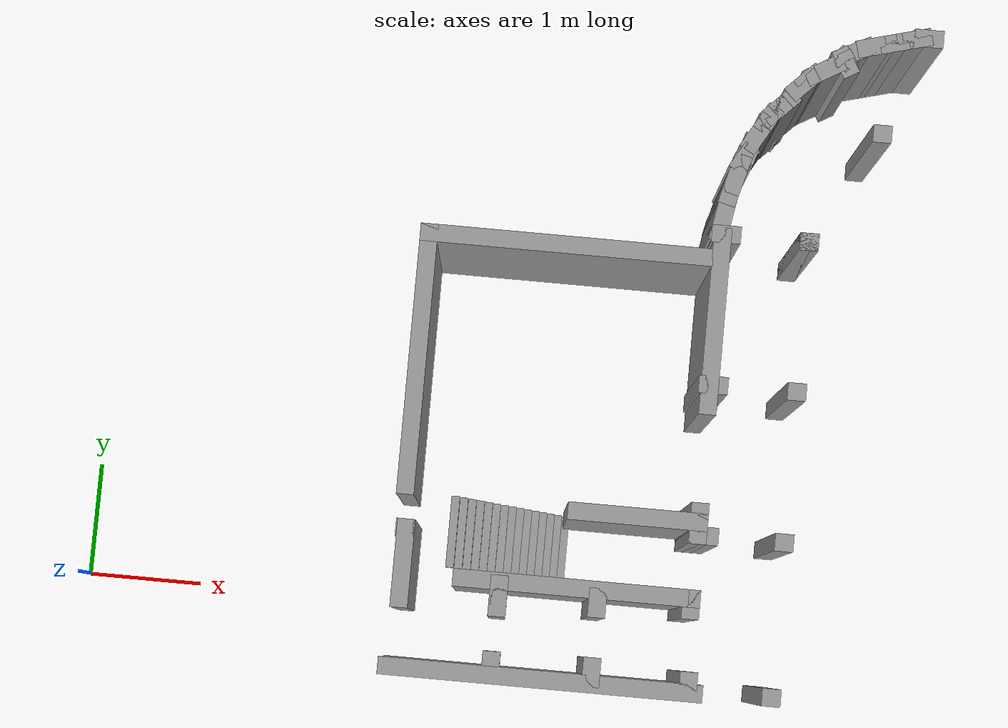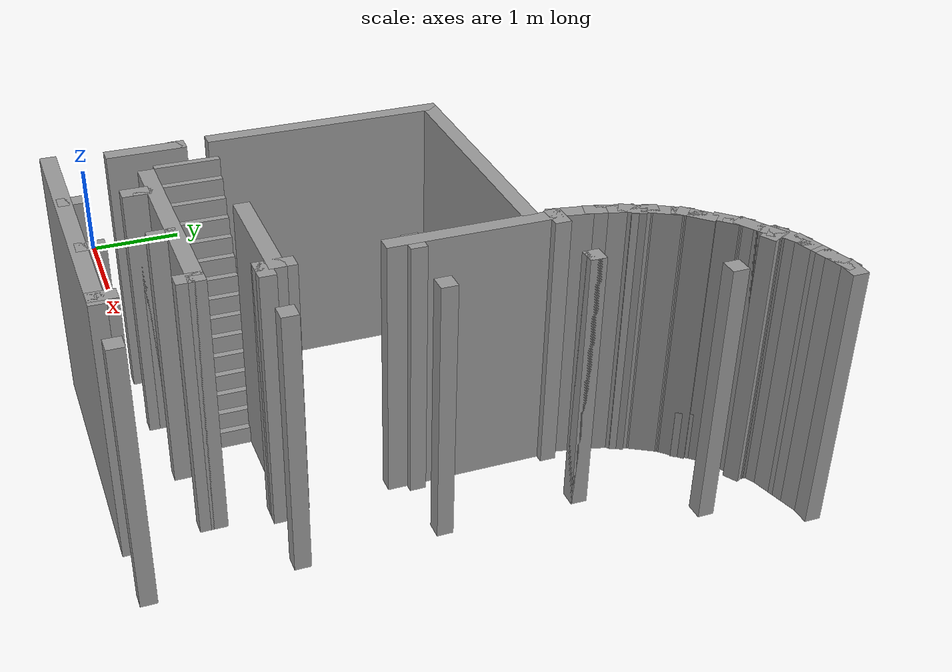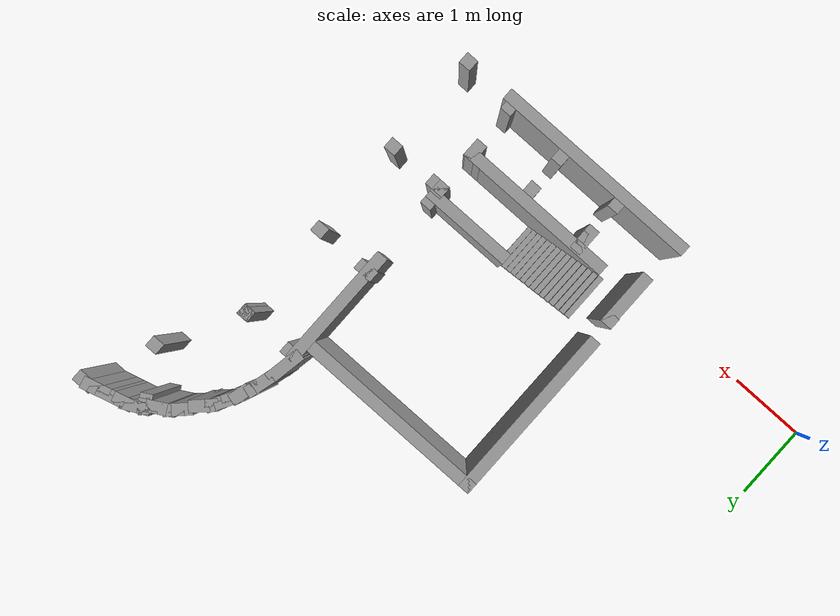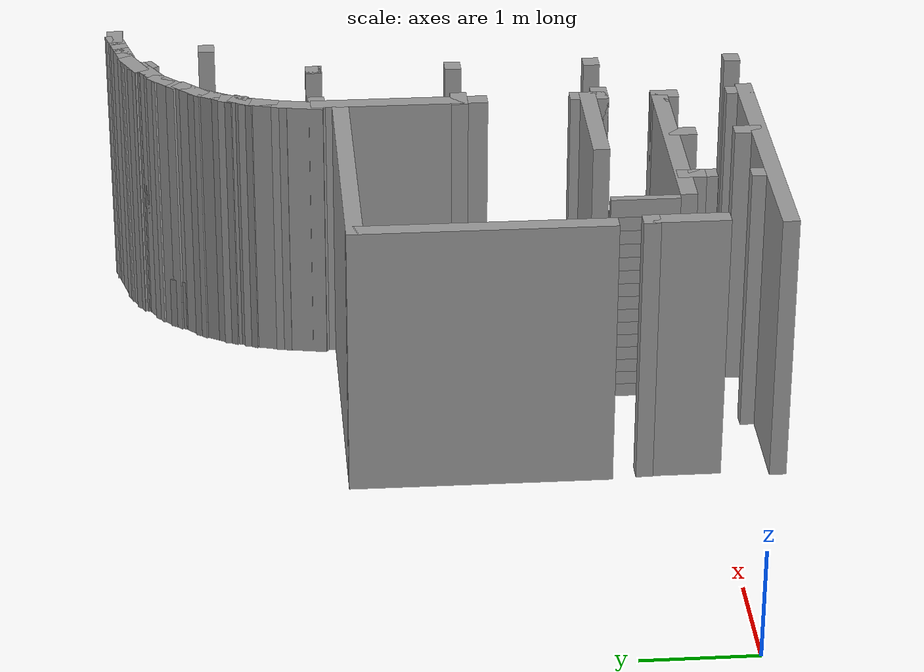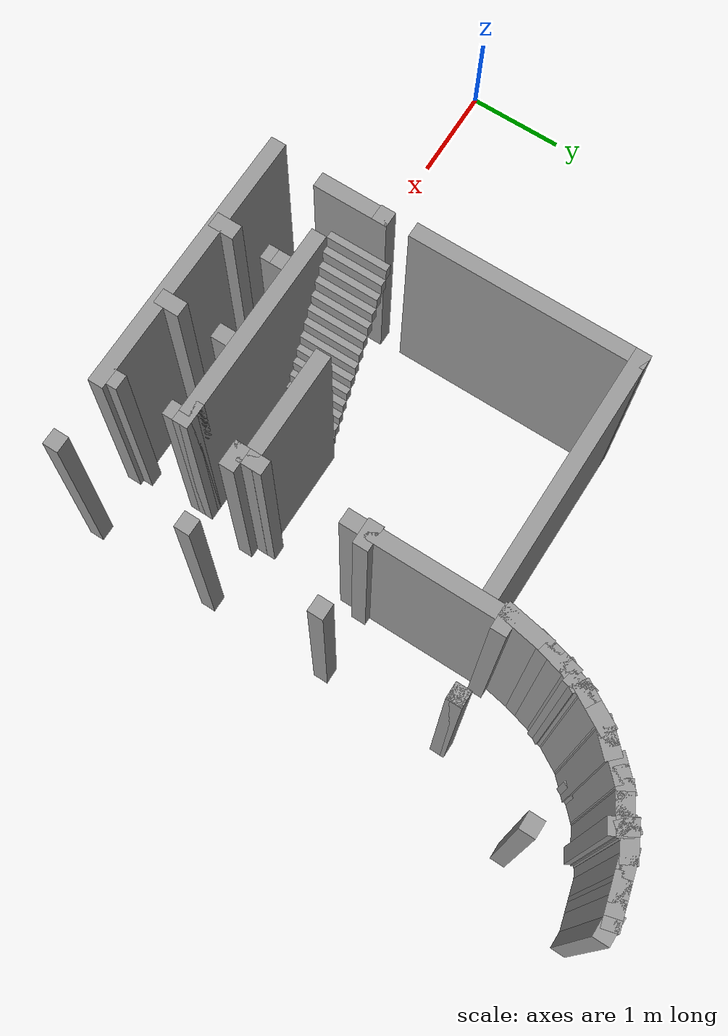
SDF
<sdf version="1.6">
 <model name="draft2">
  <pose>6.97389 -0.64018 0 0 -0 0</pose>
  <link name="Stairs_0">
   <visual name="Stairs_0_Visual_0">
    <pose>-2.70588 1.24176 0.083333 0 -0 -1.5708</pose>
    <geometry><box><size>0.60325 0.069343 0.166667</size></box></geometry>
    <material>
     <script><uri>file://media/materials/scripts/gazebo.material</uri><name>Gazebo/Grey</name></script>
     <ambient>1 1 1 1</ambient>
    </material>
   </visual>
   <collision name="Stairs_0_Collision_0">
    <geometry><box><size>0.60325 0.069343 0.166667</size></box></geometry>
    <pose>-2.70588 1.24176 0.083333 0 -0 -1.5708</pose>
   </collision>
   <visual name="Stairs_0_Visual_1">
    <pose>-2.77522 1.24176 0.25 0 -0 -1.5708</pose>
    <geometry><box><size>0.60325 0.069343 0.166667</size></box></geometry>
    <material>
     <script><uri>file://media/materials/scripts/gazebo.material</uri><name>Gazebo/Grey</name></script>
     <ambient>1 1 1 1</ambient>
    </material>
   </visual>
   <collision name="Stairs_0_Collision_1">
    <geometry><box><size>0.60325 0.069343 0.166667</size></box></geometry>
    <pose>-2.77522 1.24176 0.25 0 -0 -1.5708</pose>
   </collision>
   <visual name="Stairs_0_Visual_2">
    <pose>-2.84456 1.24176 0.416667 0 -0 -1.5708</pose>
    <geometry><box><size>0.60325 0.069343 0.166667</size></box></geometry>
    <material>
     <script><uri>file://media/materials/scripts/gazebo.material</uri><name>Gazebo/Grey</name></script>
     <ambient>1 1 1 1</ambient>
    </material>
   </visual>
   <collision name="Stairs_0_Collision_2">
    <geometry><box><size>0.60325 0.069343 0.166667</size></box></geometry>
    <pose>-2.84456 1.24176 0.416667 0 -0 -1.5708</pose>
   </collision>
   <visual name="Stairs_0_Visual_3">
    <pose>-2.91391 1.24176 0.583333 0 -0 -1.5708</pose>
    <geometry><box><size>0.60325 0.069343 0.166667</size></box></geometry>
    <material>
     <script><uri>file://media/materials/scripts/gazebo.material</uri><name>Gazebo/Grey</name></script>
     <ambient>1 1 1 1</ambient>
    </material>
   </visual>
   <collision name="Stairs_0_Collision_3">
    <geometry><box><size>0.60325 0.069343 0.166667</size></box></geometry>
    <pose>-2.91391 1.24176 0.583333 0 -0 -1.5708</pose>
   </collision>
   <visual name="Stairs_0_Visual_4">
    <pose>-2.98325 1.24176 0.75 0 -0 -1.5708</pose>
    <geometry><box><size>0.60325 0.069343 0.166667</size></box></geometry>
    <material>
     <script><uri>file://media/materials/scripts/gazebo.material</uri><name>Gazebo/Grey</name></script>
     <ambient>1 1 1 1</ambient>
    </material>
   </visual>
   <collision name="Stairs_0_Collision_4">
    <geometry><box><size>0.60325 0.069343 0.166667</size></box></geometry>
    <pose>-2.98325 1.24176 0.75 0 -0 -1.5708</pose>
   </collision>
   <visual name="Stairs_0_Visual_5">
    <pose>-3.05259 1.24176 0.916667 0 -0 -1.5708</pose>
    <geometry><box><size>0.60325 0.069343 0.166667</size></box></geometry>
    <material>
     <script><uri>file://media/materials/scripts/gazebo.material</uri><name>Gazebo/Grey</name></script>
     <ambient>1 1 1 1</ambient>
    </material>
   </visual>
   <collision name="Stairs_0_Collision_5">
    <geometry><box><size>0.60325 0.069343 0.166667</size></box></geometry>
    <pose>-3.05259 1.24176 0.916667 0 -0 -1.5708</pose>
   </collision>
   <visual name="Stairs_0_Visual_6">
    <pose>-3.12194 1.24176 1.08333 0 -0 -1.5708</pose>
    <geometry><box><size>0.60325 0.069343 0.166667</size></box></geometry>
    <material>
     <script><uri>file://media/materials/scripts/gazebo.material</uri><name>Gazebo/Grey</name></script>
     <ambient>1 1 1 1</ambient>
    </material>
   </visual>
   <collision name="Stairs_0_Collision_6">
    <geometry><box><size>0.60325 0.069343 0.166667</size></box></geometry>
    <pose>-3.12194 1.24176 1.08333 0 -0 -1.5708</pose>
   </collision>
   <visual name="Stairs_0_Visual_7">
    <pose>-3.19128 1.24176 1.25 0 -0 -1.5708</pose>
    <geometry><box><size>0.60325 0.069343 0.166667</size></box></geometry>
    <material>
     <script><uri>file://media/materials/scripts/gazebo.material</uri><name>Gazebo/Grey</name></script>
     <ambient>1 1 1 1</ambient>
    </material>
   </visual>
   <collision name="Stairs_0_Collision_7">
    <geometry><box><size>0.60325 0.069343 0.166667</size></box></geometry>
    <pose>-3.19128 1.24176 1.25 0 -0 -1.5708</pose>
   </collision>
   <visual name="Stairs_0_Visual_8">
    <pose>-3.26062 1.24176 1.41667 0 -0 -1.5708</pose>
    <geometry><box><size>0.60325 0.069343 0.166667</size></box></geometry>
    <material>
     <script><uri>file://media/materials/scripts/gazebo.material</uri><name>Gazebo/Grey</name></script>
     <ambient>1 1 1 1</ambient>
    </material>
   </visual>
   <collision name="Stairs_0_Collision_8">
    <geometry><box><size>0.60325 0.069343 0.166667</size></box></geometry>
    <pose>-3.26062 1.24176 1.41667 0 -0 -1.5708</pose>
   </collision>
   <visual name="Stairs_0_Visual_9">
    <pose>-3.32997 1.24176 1.58333 0 -0 -1.5708</pose>
    <geometry><box><size>0.60325 0.069343 0.166667</size></box></geometry>
    <material>
     <script><uri>file://media/materials/scripts/gazebo.material</uri><name>Gazebo/Grey</name></script>
     <ambient>1 1 1 1</ambient>
    </material>
   </visual>
   <collision name="Stairs_0_Collision_9">
    <geometry><box><size>0.60325 0.069343 0.166667</size></box></geometry>
    <pose>-3.32997 1.24176 1.58333 0 -0 -1.5708</pose>
   </collision>
   <visual name="Stairs_0_Visual_10">
    <pose>-3.39931 1.24176 1.75 0 -0 -1.5708</pose>
    <geometry><box><size>0.60325 0.069343 0.166667</size></box></geometry>
    <material>
     <script><uri>file://media/materials/scripts/gazebo.material</uri><name>Gazebo/Grey</name></script>
     <ambient>1 1 1 1</ambient>
    </material>
   </visual>
   <collision name="Stairs_0_Collision_10">
    <geometry><box><size>0.60325 0.069343 0.166667</size></box></geometry>
    <pose>-3.39931 1.24176 1.75 0 -0 -1.5708</pose>
   </collision>
   <visual name="Stairs_0_Visual_11">
    <pose>-3.46865 1.24176 1.91667 0 -0 -1.5708</pose>
    <geometry><box><size>0.60325 0.069343 0.166667</size></box></geometry>
    <material>
     <script><uri>file://media/materials/scripts/gazebo.material</uri><name>Gazebo/Grey</name></script>
     <ambient>1 1 1 1</ambient>
    </material>
   </visual>
   <collision name="Stairs_0_Collision_11">
    <geometry><box><size>0.60325 0.069343 0.166667</size></box></geometry>
    <pose>-3.46865 1.24176 1.91667 0 -0 -1.5708</pose>
   </collision>
   <visual name="Stairs_0_Visual_12">
    <pose>-3.538 1.24176 2.08333 0 -0 -1.5708</pose>
    <geometry><box><size>0.60325 0.069343 0.166667</size></box></geometry>
    <material>
     <script><uri>file://media/materials/scripts/gazebo.material</uri><name>Gazebo/Grey</name></script>
     <ambient>1 1 1 1</ambient>
    </material>
   </visual>
   <collision name="Stairs_0_Collision_12">
    <geometry><box><size>0.60325 0.069343 0.166667</size></box></geometry>
    <pose>-3.538 1.24176 2.08333 0 -0 -1.5708</pose>
   </collision>
   <visual name="Stairs_0_Visual_13">
    <pose>-3.60734 1.24176 2.25 0 -0 -1.5708</pose>
    <geometry><box><size>0.60325 0.069343 0.166667</size></box></geometry>
    <material>
     <script><uri>file://media/materials/scripts/gazebo.material</uri><name>Gazebo/Grey</name></script>
     <ambient>1 1 1 1</ambient>
    </material>
   </visual>
   <collision name="Stairs_0_Collision_13">
    <geometry><box><size>0.60325 0.069343 0.166667</size></box></geometry>
    <pose>-3.60734 1.24176 2.25 0 -0 -1.5708</pose>
   </collision>
   <visual name="Stairs_0_Visual_14">
    <pose>-3.67668 1.24176 2.41667 0 -0 -1.5708</pose>
    <geometry><box><size>0.60325 0.069343 0.166667</size></box></geometry>
    <material>
     <script><uri>file://media/materials/scripts/gazebo.material</uri><name>Gazebo/Grey</name></script>
     <ambient>1 1 1 1</ambient>
    </material>
   </visual>
   <collision name="Stairs_0_Collision_14">
    <geometry><box><size>0.60325 0.069343 0.166667</size></box></geometry>
    <pose>-3.67668 1.24176 2.41667 0 -0 -1.5708</pose>
   </collision>
  </link>
  <link name="Wall_10">
   <collision name="Wall_10_Collision">
    <geometry><box><size>0.16 0.15 2.5</size></box></geometry>
    <pose>0 0 1.25 0 -0 0</pose>
   </collision>
   <visual name="Wall_10_Visual">
    <pose>0 0 1.25 0 -0 0</pose>
    <geometry><box><size>0.16 0.15 2.5</size></box></geometry>
    <material>
     <script><uri>file://media/materials/scripts/gazebo.material</uri><name>Gazebo/Grey</name></script>
     <ambient>1 1 1 1</ambient>
    </material>
   </visual>
   <pose>-4.08069 1.24095 0 0 -0 0</pose>
  </link>
  <link name="Wall_107">
   <collision name="Wall_107_Collision">
    <geometry><box><size>0.25 0.15 2.5</size></box></geometry>
    <pose>0 0 1.25 0 -0 0</pose>
   </collision>
   <visual name="Wall_107_Visual">
    <pose>0 0 1.25 0 -0 0</pose>
    <geometry><box><size>0.25 0.15 2.5</size></box></geometry>
    <material>
     <script><uri>file://media/materials/scripts/gazebo.material</uri><name>Gazebo/Grey</name></script>
     <ambient>1 1 1 1</ambient>
    </material>
   </visual>
   <pose>-1.58806 3.9678 0 0 -0 3.14159</pose>
  </link>
  <link name="Wall_109">
   <collision name="Wall_109_Collision">
    <geometry><box><size>0.25 0.15 2.5</size></box></geometry>
    <pose>0 0 1.25 0 -0 0</pose>
   </collision>
   <visual name="Wall_109_Visual">
    <pose>0 0 1.25 0 -0 0</pose>
    <geometry><box><size>0.25 0.15 2.5</size></box></geometry>
    <material>
     <script><uri>file://media/materials/scripts/gazebo.material</uri><name>Gazebo/Grey</name></script>
     <ambient>1 1 1 1</ambient>
    </material>
   </visual>
   <pose>-1.58806 2.67781 0 0 -0 0</pose>
  </link>
  <link name="Wall_11">
   <collision name="Wall_11_Collision">
    <geometry><box><size>0.75 0.15 2.5</size></box></geometry>
    <pose>0 0 1.25 0 -0 0</pose>
   </collision>
   <visual name="Wall_11_Visual">
    <pose>0 0 1.25 0 -0 0</pose>
    <geometry><box><size>0.75 0.15 2.5</size></box></geometry>
    <material>
     <script><uri>file://media/materials/scripts/gazebo.material</uri><name>Gazebo/Grey</name></script>
     <ambient>1 1 1 1</ambient>
    </material>
   </visual>
   <pose>-4.07569 0.940948 0 0 0 -1.5708</pose>
  </link>
  <link name="Wall_123">
   <collision name="Wall_123_Collision">
    <geometry><box><size>0.16 0.15 2.5</size></box></geometry>
    <pose>0 0 1.25 0 -0 0</pose>
   </collision>
   <visual name="Wall_123_Visual">
    <pose>0 0 1.25 0 -0 0</pose>
    <geometry><box><size>0.16 0.15 2.5</size></box></geometry>
    <material>
     <script><uri>file://media/materials/scripts/gazebo.material</uri><name>Gazebo/Grey</name></script>
     <ambient>1 1 1 1</ambient>
    </material>
   </visual>
   <pose>-0.877885 3.96618 0 0 -0 0</pose>
  </link>
  <link name="Wall_124">
   <collision name="Wall_124_Collision">
    <geometry><box><size>0.16 0.15 2.5</size></box></geometry>
    <pose>0 0 1.25 0 -0 0</pose>
   </collision>
   <visual name="Wall_124_Visual">
    <pose>0 0 1.25 0 -0 0</pose>
    <geometry><box><size>0.16 0.15 2.5</size></box></geometry>
    <material>
     <script><uri>file://media/materials/scripts/gazebo.material</uri><name>Gazebo/Grey</name></script>
     <ambient>1 1 1 1</ambient>
    </material>
   </visual>
   <pose>-0.877885 3.96618 0 0 -0 3.14159</pose>
  </link>
  <link name="Wall_127">
   <collision name="Wall_127_Collision">
    <geometry><box><size>0.16 0.15 2.5</size></box></geometry>
    <pose>0 0 1.25 0 -0 0</pose>
   </collision>
   <visual name="Wall_127_Visual">
    <pose>0 0 1.25 0 -0 0</pose>
    <geometry><box><size>0.16 0.15 2.5</size></box></geometry>
    <material>
     <script><uri>file://media/materials/scripts/gazebo.material</uri><name>Gazebo/Grey</name></script>
     <ambient>1 1 1 1</ambient>
    </material>
   </visual>
   <pose>-0.335407 4.94454 0 0 -0 0</pose>
  </link>
  <link name="Wall_129">
   <collision name="Wall_129_Collision">
    <geometry><box><size>0.16 0.15 2.5</size></box></geometry>
    <pose>0 0 1.25 0 -0 0</pose>
   </collision>
   <visual name="Wall_129_Visual">
    <pose>0 0 1.25 0 -0 0</pose>
    <geometry><box><size>0.16 0.15 2.5</size></box></geometry>
    <material>
     <script><uri>file://media/materials/scripts/gazebo.material</uri><name>Gazebo/Grey</name></script>
     <ambient>1 1 1 1</ambient>
    </material>
   </visual>
   <pose>-0.877632 2.68306 0 0 -0 0</pose>
  </link>
  <link name="Wall_13">
   <collision name="Wall_13_Collision">
    <geometry><box><size>2 0.15 2.5</size></box></geometry>
    <pose>0 0 1.25 0 -0 0</pose>
   </collision>
   <visual name="Wall_13_Visual">
    <pose>0 0 1.25 0 -0 0</pose>
    <geometry><box><size>2 0.15 2.5</size></box></geometry>
    <material>
     <script><uri>file://media/materials/scripts/gazebo.material</uri><name>Gazebo/Grey</name></script>
     <ambient>1 1 1 1</ambient>
    </material>
   </visual>
   <pose>-2.64319 0.861448 0 0 -0 0</pose>
  </link>
  <link name="Wall_131">
   <collision name="Wall_131_Collision">
    <geometry><box><size>0.16 0.15 2.5</size></box></geometry>
    <pose>0 0 1.25 0 -0 0</pose>
   </collision>
   <visual name="Wall_131_Visual">
    <pose>0 0 1.25 0 -0 0</pose>
    <geometry><box><size>0.16 0.15 2.5</size></box></geometry>
    <material>
     <script><uri>file://media/materials/scripts/gazebo.material</uri><name>Gazebo/Grey</name></script>
     <ambient>1 1 1 1</ambient>
    </material>
   </visual>
   <pose>-0.877632 1.40024 0 0 -0 0</pose>
  </link>
  <link name="Wall_133">
   <collision name="Wall_133_Collision">
    <geometry><box><size>0.16 0.15 2.5</size></box></geometry>
    <pose>0 0 1.25 0 -0 0</pose>
   </collision>
   <visual name="Wall_133_Visual">
    <pose>0 0 1.25 0 -0 0</pose>
    <geometry><box><size>0.16 0.15 2.5</size></box></geometry>
    <material>
     <script><uri>file://media/materials/scripts/gazebo.material</uri><name>Gazebo/Grey</name></script>
     <ambient>1 1 1 1</ambient>
    </material>
   </visual>
   <pose>-0.877632 0.090964 0 0 -0 0</pose>
  </link>
  <link name="Wall_16">
   <collision name="Wall_16_Collision">
    <geometry><box><size>0.25 0.15 2.5</size></box></geometry>
    <pose>0 0 1.25 0 -0 0</pose>
   </collision>
   <visual name="Wall_16_Visual">
    <pose>0 0 1.25 0 -0 0</pose>
    <geometry><box><size>0.25 0.15 2.5</size></box></geometry>
    <material>
     <script><uri>file://media/materials/scripts/gazebo.material</uri><name>Gazebo/Grey</name></script>
     <ambient>1 1 1 1</ambient>
    </material>
   </visual>
   <pose>-1.66819 0.861448 0 0 -0 0</pose>
  </link>
  <link name="Wall_17">
   <collision name="Wall_17_Collision">
    <geometry><box><size>0.25 0.15 2.5</size></box></geometry>
    <pose>0 0 1.25 0 -0 0</pose>
   </collision>
   <visual name="Wall_17_Visual">
    <pose>0 0 1.25 0 -0 0</pose>
    <geometry><box><size>0.25 0.15 2.5</size></box></geometry>
    <material>
     <script><uri>file://media/materials/scripts/gazebo.material</uri><name>Gazebo/Grey</name></script>
     <ambient>1 1 1 1</ambient>
    </material>
   </visual>
   <pose>-1.61819 0.811448 0 0 0 -1.5708</pose>
  </link>
  <link name="Wall_175">
   <collision name="Wall_175_Collision">
    <geometry><box><size>0.25 0.15 2.5</size></box></geometry>
    <pose>0 0 1.25 0 -0 0</pose>
   </collision>
   <visual name="Wall_175_Visual">
    <pose>0 0 1.25 0 -0 0</pose>
    <geometry><box><size>0.25 0.15 2.5</size></box></geometry>
    <material>
     <script><uri>file://media/materials/scripts/gazebo.material</uri><name>Gazebo/Grey</name></script>
     <ambient>1 1 1 1</ambient>
    </material>
   </visual>
   <pose>-1.61001 1.54861 0 0 0 -1.5708</pose>
  </link>
  <link name="Wall_176">
   <collision name="Wall_176_Collision">
    <geometry><box><size>0.25 0.15 2.5</size></box></geometry>
    <pose>0 0 1.25 0 -0 0</pose>
   </collision>
   <visual name="Wall_176_Visual">
    <pose>0 0 1.25 0 -0 0</pose>
    <geometry><box><size>0.25 0.15 2.5</size></box></geometry>
    <material>
     <script><uri>file://media/materials/scripts/gazebo.material</uri><name>Gazebo/Grey</name></script>
     <ambient>1 1 1 1</ambient>
    </material>
   </visual>
   <pose>-1.61001 1.44861 0 0 0 -1.5708</pose>
  </link>
  <link name="Wall_177">
   <collision name="Wall_177_Collision">
    <geometry><box><size>0.25 0.15 2.5</size></box></geometry>
    <pose>0 0 1.25 0 -0 0</pose>
   </collision>
   <visual name="Wall_177_Visual">
    <pose>0 0 1.25 0 -0 0</pose>
    <geometry><box><size>0.25 0.15 2.5</size></box></geometry>
    <material>
     <script><uri>file://media/materials/scripts/gazebo.material</uri><name>Gazebo/Grey</name></script>
     <ambient>1 1 1 1</ambient>
    </material>
   </visual>
   <pose>-1.56001 1.39861 0 0 -0 0</pose>
  </link>
  <link name="Wall_179">
   <collision name="Wall_179_Collision">
    <geometry><box><size>0.25 0.15 2.5</size></box></geometry>
    <pose>0 0 1.25 0 -0 0</pose>
   </collision>
   <visual name="Wall_179_Visual">
    <pose>0 0 1.25 0 -0 0</pose>
    <geometry><box><size>0.25 0.15 2.5</size></box></geometry>
    <material>
     <script><uri>file://media/materials/scripts/gazebo.material</uri><name>Gazebo/Grey</name></script>
     <ambient>1 1 1 1</ambient>
    </material>
   </visual>
   <pose>-1.58356 0.120314 0 0 0 -1.5708</pose>
  </link>
  <link name="Wall_21">
   <collision name="Wall_21_Collision">
    <geometry><box><size>0.25 0.15 2.5</size></box></geometry>
    <pose>0 0 1.25 0 -0 0</pose>
   </collision>
   <visual name="Wall_21_Visual">
    <pose>0 0 1.25 0 -0 0</pose>
    <geometry><box><size>0.25 0.15 2.5</size></box></geometry>
    <material>
     <script><uri>file://media/materials/scripts/gazebo.material</uri><name>Gazebo/Grey</name></script>
     <ambient>1 1 1 1</ambient>
    </material>
   </visual>
   <pose>-2.40669 0.753948 0 0 0 -1.5708</pose>
  </link>
  <link name="Wall_23">
   <collision name="Wall_23_Collision">
    <geometry><box><size>0.25 0.15 2.5</size></box></geometry>
    <pose>0 0 1.25 0 -0 0</pose>
   </collision>
   <visual name="Wall_23_Visual">
    <pose>0 0 1.25 0 -0 0</pose>
    <geometry><box><size>0.25 0.15 2.5</size></box></geometry>
    <material>
     <script><uri>file://media/materials/scripts/gazebo.material</uri><name>Gazebo/Grey</name></script>
     <ambient>1 1 1 1</ambient>
    </material>
   </visual>
   <pose>-3.24619 0.788448 0 0 0 -1.5708</pose>
  </link>
  <link name="Wall_24">
   <collision name="Wall_24_Collision">
    <geometry><box><size>0.25 0.15 2.5</size></box></geometry>
    <pose>0 0 1.25 0 -0 0</pose>
   </collision>
   <visual name="Wall_24_Visual">
    <pose>0 0 1.25 0 -0 0</pose>
    <geometry><box><size>0.25 0.15 2.5</size></box></geometry>
    <material>
     <script><uri>file://media/materials/scripts/gazebo.material</uri><name>Gazebo/Grey</name></script>
     <ambient>1 1 1 1</ambient>
    </material>
   </visual>
   <pose>-3.24619 0.688448 0 0 0 -1.5708</pose>
  </link>
  <link name="Wall_26">
   <collision name="Wall_26_Collision">
    <geometry><box><size>0.25 0.15 2.5</size></box></geometry>
    <pose>0 0 1.25 0 -0 0</pose>
   </collision>
   <visual name="Wall_26_Visual">
    <pose>0 0 1.25 0 -0 0</pose>
    <geometry><box><size>0.25 0.15 2.5</size></box></geometry>
    <material>
     <script><uri>file://media/materials/scripts/gazebo.material</uri><name>Gazebo/Grey</name></script>
     <ambient>1 1 1 1</ambient>
    </material>
   </visual>
   <pose>-3.25769 0.144448 0 0 0 -1.5708</pose>
  </link>
  <link name="Wall_28">
   <collision name="Wall_28_Collision">
    <geometry><box><size>0.25 0.15 2.5</size></box></geometry>
    <pose>0 0 1.25 0 -0 0</pose>
   </collision>
   <visual name="Wall_28_Visual">
    <pose>0 0 1.25 0 -0 0</pose>
    <geometry><box><size>0.25 0.15 2.5</size></box></geometry>
    <material>
     <script><uri>file://media/materials/scripts/gazebo.material</uri><name>Gazebo/Grey</name></script>
     <ambient>1 1 1 1</ambient>
    </material>
   </visual>
   <pose>-2.40669 0.167448 0 0 0 -1.5708</pose>
  </link>
  <link name="Wall_306">
   <collision name="Wall_306_Collision">
    <geometry><box><size>1.19007 0.15 2.5</size></box></geometry>
    <pose>0 0 1.25 0 -0 0</pose>
   </collision>
   <visual name="Wall_306_Visual">
    <pose>0 0 1.25 0 -0 0</pose>
    <geometry><box><size>1.19007 0.15 2.5</size></box></geometry>
    <material>
     <script><uri>file://media/materials/scripts/gazebo.material</uri><name>Gazebo/Grey</name></script>
     <ambient>1 1 1 1</ambient>
    </material>
   </visual>
   <pose>-2.12923 1.50937 0 0 -0 0</pose>
  </link>
  <link name="Wall_32">
   <collision name="Wall_32_Collision">
    <geometry><box><size>2.31 0.15 2.5</size></box></geometry>
    <pose>0 0 1.25 0 -0 0</pose>
   </collision>
   <visual name="Wall_32_Visual">
    <pose>0 0 1.25 0 -0 0</pose>
    <geometry><box><size>2.31 0.15 2.5</size></box></geometry>
    <material>
     <script><uri>file://media/materials/scripts/gazebo.material</uri><name>Gazebo/Grey</name></script>
     <ambient>1 1 1 1</ambient>
    </material>
   </visual>
   <pose>-4.10869 2.67745 0 0 -0 1.5708</pose>
  </link>
  <link name="Wall_35">
   <collision name="Wall_35_Collision">
    <geometry><box><size>2.5 0.15 2.5</size></box></geometry>
    <pose>0 0 1.25 0 -0 0</pose>
   </collision>
   <visual name="Wall_35_Visual">
    <pose>0 0 1.25 0 -0 0</pose>
    <geometry><box><size>2.5 0.15 2.5</size></box></geometry>
    <material>
     <script><uri>file://media/materials/scripts/gazebo.material</uri><name>Gazebo/Grey</name></script>
     <ambient>1 1 1 1</ambient>
    </material>
   </visual>
   <pose>-2.93369 3.75745 0 0 -0 0</pose>
  </link>
  <link name="Wall_38">
   <collision name="Wall_38_Collision">
    <geometry><box><size>1.60086 0.15 2.5</size></box></geometry>
    <pose>0 0 1.25 0 -0 0</pose>
   </collision>
   <visual name="Wall_38_Visual">
    <pose>0 0 1.25 0 -0 0</pose>
    <geometry><box><size>1.60086 0.15 2.5</size></box></geometry>
    <material>
     <script><uri>file://media/materials/scripts/gazebo.material</uri><name>Gazebo/Grey</name></script>
     <ambient>1 1 1 1</ambient>
    </material>
   </visual>
   <pose>-1.61806 3.22281 0 0 -0 1.5708</pose>
  </link>
  <link name="Wall_40">
   <collision name="Wall_40_Collision">
    <geometry><box><size>0.471487 0.15 2.5</size></box></geometry>
    <pose>0 0 1.25 0 -0 0</pose>
   </collision>
   <visual name="Wall_40_Visual">
    <pose>0 0 1.25 0 -0 0</pose>
    <geometry><box><size>0.471487 0.15 2.5</size></box></geometry>
    <material>
     <script><uri>file://media/materials/scripts/gazebo.material</uri><name>Gazebo/Grey</name></script>
     <ambient>1 1 1 1</ambient>
    </material>
   </visual>
   <pose>-1.62012 4.1361 0 0 -0 1.39609</pose>
  </link>
  <link name="Wall_41">
   <collision name="Wall_41_Collision">
    <geometry><box><size>0.25 0.15 2.5</size></box></geometry>
    <pose>0 0 1.25 0 -0 0</pose>
   </collision>
   <visual name="Wall_41_Visual">
    <pose>0 0 1.25 0 -0 0</pose>
    <geometry><box><size>0.25 0.15 2.5</size></box></geometry>
    <material>
     <script><uri>file://media/materials/scripts/gazebo.material</uri><name>Gazebo/Grey</name></script>
     <ambient>1 1 1 1</ambient>
    </material>
   </visual>
   <pose>-1.57924 4.34269 0 0 -0 1.309</pose>
  </link>
  <link name="Wall_42">
   <collision name="Wall_42_Collision">
    <geometry><box><size>0.25 0.15 2.5</size></box></geometry>
    <pose>0 0 1.25 0 -0 0</pose>
   </collision>
   <visual name="Wall_42_Visual">
    <pose>0 0 1.25 0 -0 0</pose>
    <geometry><box><size>0.25 0.15 2.5</size></box></geometry>
    <material>
     <script><uri>file://media/materials/scripts/gazebo.material</uri><name>Gazebo/Grey</name></script>
     <ambient>1 1 1 1</ambient>
    </material>
   </visual>
   <pose>-1.55336 4.43929 0 0 -0 1.309</pose>
  </link>
  <link name="Wall_44">
   <collision name="Wall_44_Collision">
    <geometry><box><size>0.25 0.15 2.5</size></box></geometry>
    <pose>0 0 1.25 0 -0 0</pose>
   </collision>
   <visual name="Wall_44_Visual">
    <pose>0 0 1.25 0 -0 0</pose>
    <geometry><box><size>0.25 0.15 2.5</size></box></geometry>
    <material>
     <script><uri>file://media/materials/scripts/gazebo.material</uri><name>Gazebo/Grey</name></script>
     <ambient>1 1 1 1</ambient>
    </material>
   </visual>
   <pose>-1.55336 4.43929 0 0 -0 1.309</pose>
  </link>
  <link name="Wall_45">
   <collision name="Wall_45_Collision">
    <geometry><box><size>0.25 0.15 2.5</size></box></geometry>
    <pose>0 0 1.25 0 -0 0</pose>
   </collision>
   <visual name="Wall_45_Visual">
    <pose>0 0 1.25 0 -0 0</pose>
    <geometry><box><size>0.25 0.15 2.5</size></box></geometry>
    <material>
     <script><uri>file://media/materials/scripts/gazebo.material</uri><name>Gazebo/Grey</name></script>
     <ambient>1 1 1 1</ambient>
    </material>
   </visual>
   <pose>-1.52747 4.53588 0 0 -0 1.309</pose>
  </link>
  <link name="Wall_46">
   <collision name="Wall_46_Collision">
    <geometry><box><size>0.25 0.15 2.5</size></box></geometry>
    <pose>0 0 1.25 0 -0 0</pose>
   </collision>
   <visual name="Wall_46_Visual">
    <pose>0 0 1.25 0 -0 0</pose>
    <geometry><box><size>0.25 0.15 2.5</size></box></geometry>
    <material>
     <script><uri>file://media/materials/scripts/gazebo.material</uri><name>Gazebo/Grey</name></script>
     <ambient>1 1 1 1</ambient>
    </material>
   </visual>
   <pose>-1.48953 4.62748 0 0 -0 1.0472</pose>
  </link>
  <link name="Wall_47">
   <collision name="Wall_47_Collision">
    <geometry><box><size>0.25 0.15 2.5</size></box></geometry>
    <pose>0 0 1.25 0 -0 0</pose>
   </collision>
   <visual name="Wall_47_Visual">
    <pose>0 0 1.25 0 -0 0</pose>
    <geometry><box><size>0.25 0.15 2.5</size></box></geometry>
    <material>
     <script><uri>file://media/materials/scripts/gazebo.material</uri><name>Gazebo/Grey</name></script>
     <ambient>1 1 1 1</ambient>
    </material>
   </visual>
   <pose>-1.45159 4.71907 0 0 -0 1.309</pose>
  </link>
  <link name="Wall_48">
   <collision name="Wall_48_Collision">
    <geometry><box><size>0.25 0.15 2.5</size></box></geometry>
    <pose>0 0 1.25 0 -0 0</pose>
   </collision>
   <visual name="Wall_48_Visual">
    <pose>0 0 1.25 0 -0 0</pose>
    <geometry><box><size>0.25 0.15 2.5</size></box></geometry>
    <material>
     <script><uri>file://media/materials/scripts/gazebo.material</uri><name>Gazebo/Grey</name></script>
     <ambient>1 1 1 1</ambient>
    </material>
   </visual>
   <pose>-1.41365 4.81067 0 0 -0 1.0472</pose>
  </link>
  <link name="Wall_49">
   <collision name="Wall_49_Collision">
    <geometry><box><size>0.25 0.15 2.5</size></box></geometry>
    <pose>0 0 1.25 0 -0 0</pose>
   </collision>
   <visual name="Wall_49_Visual">
    <pose>0 0 1.25 0 -0 0</pose>
    <geometry><box><size>0.25 0.15 2.5</size></box></geometry>
    <material>
     <script><uri>file://media/materials/scripts/gazebo.material</uri><name>Gazebo/Grey</name></script>
     <ambient>1 1 1 1</ambient>
    </material>
   </visual>
   <pose>-1.36365 4.89727 0 0 -0 1.0472</pose>
  </link>
  <link name="Wall_50">
   <collision name="Wall_50_Collision">
    <geometry><box><size>0.25 0.15 2.5</size></box></geometry>
    <pose>0 0 1.25 0 -0 0</pose>
   </collision>
   <visual name="Wall_50_Visual">
    <pose>0 0 1.25 0 -0 0</pose>
    <geometry><box><size>0.25 0.15 2.5</size></box></geometry>
    <material>
     <script><uri>file://media/materials/scripts/gazebo.material</uri><name>Gazebo/Grey</name></script>
     <ambient>1 1 1 1</ambient>
    </material>
   </visual>
   <pose>-1.31365 4.98388 0 0 -0 1.0472</pose>
  </link>
  <link name="Wall_51">
   <collision name="Wall_51_Collision">
    <geometry><box><size>0.25 0.15 2.5</size></box></geometry>
    <pose>0 0 1.25 0 -0 0</pose>
   </collision>
   <visual name="Wall_51_Visual">
    <pose>0 0 1.25 0 -0 0</pose>
    <geometry><box><size>0.25 0.15 2.5</size></box></geometry>
    <material>
     <script><uri>file://media/materials/scripts/gazebo.material</uri><name>Gazebo/Grey</name></script>
     <ambient>1 1 1 1</ambient>
    </material>
   </visual>
   <pose>-1.2533 5.06253 0 0 -0 0.785398</pose>
  </link>
  <link name="Wall_52">
   <collision name="Wall_52_Collision">
    <geometry><box><size>0.25 0.15 2.5</size></box></geometry>
    <pose>0 0 1.25 0 -0 0</pose>
   </collision>
   <visual name="Wall_52_Visual">
    <pose>0 0 1.25 0 -0 0</pose>
    <geometry><box><size>0.25 0.15 2.5</size></box></geometry>
    <material>
     <script><uri>file://media/materials/scripts/gazebo.material</uri><name>Gazebo/Grey</name></script>
     <ambient>1 1 1 1</ambient>
    </material>
   </visual>
   <pose>-1.18258 5.13324 0 0 -0 0.785398</pose>
  </link>
  <link name="Wall_53">
   <pose>-1.12223 5.2119 0 0 -0 1.0472</pose>
   <visual name="Wall_53_Visual_0">
    <pose>0 0 0.25 0 -0 0</pose>
    <geometry><box><size>0.25 0.15 0.5</size></box></geometry>
    <material>
     <script><uri>file://media/materials/scripts/gazebo.material</uri><name>Gazebo/Grey</name></script>
     <ambient>1 1 1 1</ambient>
    </material>
   </visual>
   <collision name="Wall_53_Collision_0">
    <geometry><box><size>0.25 0.15 0.5</size></box></geometry>
    <pose>0 0 0.25 0 -0 0</pose>
   </collision>
  </link>
  <link name="Wall_54">
   <collision name="Wall_54_Collision">
    <geometry><box><size>0.25 0.15 2.5</size></box></geometry>
    <pose>0 0 1.25 0 -0 0</pose>
   </collision>
   <visual name="Wall_54_Visual">
    <pose>0 0 1.25 0 -0 0</pose>
    <geometry><box><size>0.25 0.15 2.5</size></box></geometry>
    <material>
     <script><uri>file://media/materials/scripts/gazebo.material</uri><name>Gazebo/Grey</name></script>
     <ambient>1 1 1 1</ambient>
    </material>
   </visual>
   <pose>-1.06187 5.29056 0 0 -0 0.785398</pose>
  </link>
  <link name="Wall_55">
   <collision name="Wall_55_Collision">
    <geometry><box><size>0.25 0.15 2.5</size></box></geometry>
    <pose>0 0 1.25 0 -0 0</pose>
   </collision>
   <visual name="Wall_55_Visual">
    <pose>0 0 1.25 0 -0 0</pose>
    <geometry><box><size>0.25 0.15 2.5</size></box></geometry>
    <material>
     <script><uri>file://media/materials/scripts/gazebo.material</uri><name>Gazebo/Grey</name></script>
     <ambient>1 1 1 1</ambient>
    </material>
   </visual>
   <pose>-0.991164 5.36127 0 0 -0 0.785398</pose>
  </link>
  <link name="Wall_56">
   <collision name="Wall_56_Collision">
    <geometry><box><size>0.25 0.15 2.5</size></box></geometry>
    <pose>0 0 1.25 0 -0 0</pose>
   </collision>
   <visual name="Wall_56_Visual">
    <pose>0 0 1.25 0 -0 0</pose>
    <geometry><box><size>0.25 0.15 2.5</size></box></geometry>
    <material>
     <script><uri>file://media/materials/scripts/gazebo.material</uri><name>Gazebo/Grey</name></script>
     <ambient>1 1 1 1</ambient>
    </material>
   </visual>
   <pose>-0.912507 5.42162 0 0 -0 0.523599</pose>
  </link>
  <link name="Wall_57">
   <collision name="Wall_57_Collision">
    <geometry><box><size>0.25 0.15 2.5</size></box></geometry>
    <pose>0 0 1.25 0 -0 0</pose>
   </collision>
   <visual name="Wall_57_Visual">
    <pose>0 0 1.25 0 -0 0</pose>
    <geometry><box><size>0.25 0.15 2.5</size></box></geometry>
    <material>
     <script><uri>file://media/materials/scripts/gazebo.material</uri><name>Gazebo/Grey</name></script>
     <ambient>1 1 1 1</ambient>
    </material>
   </visual>
   <pose>-0.825904 5.47162 0 0 -0 0.523599</pose>
  </link>
  <link name="Wall_58">
   <collision name="Wall_58_Collision">
    <geometry><box><size>0.25 0.15 2.5</size></box></geometry>
    <pose>0 0 1.25 0 -0 0</pose>
   </collision>
   <visual name="Wall_58_Visual">
    <pose>0 0 1.25 0 -0 0</pose>
    <geometry><box><size>0.25 0.15 2.5</size></box></geometry>
    <material>
     <script><uri>file://media/materials/scripts/gazebo.material</uri><name>Gazebo/Grey</name></script>
     <ambient>1 1 1 1</ambient>
    </material>
   </visual>
   <pose>-0.739302 5.52162 0 0 -0 0.523599</pose>
  </link>
  <link name="Wall_59">
   <collision name="Wall_59_Collision">
    <geometry><box><size>0.189044 0.15 2.5</size></box></geometry>
    <pose>0 0 1.25 0 -0 0</pose>
   </collision>
   <visual name="Wall_59_Visual">
    <pose>0 0 1.25 0 -0 0</pose>
    <geometry><box><size>0.189044 0.15 2.5</size></box></geometry>
    <material>
     <script><uri>file://media/materials/scripts/gazebo.material</uri><name>Gazebo/Grey</name></script>
     <ambient>1 1 1 1</ambient>
    </material>
   </visual>
   <pose>-0.71029 5.55992 0 0 -0 2.39199</pose>
  </link>
  <link name="Wall_60">
   <collision name="Wall_60_Collision">
    <geometry><box><size>0.358356 0.15 2.5</size></box></geometry>
    <pose>0 0 1.25 0 -0 0</pose>
   </collision>
   <visual name="Wall_60_Visual">
    <pose>0 0 1.25 0 -0 0</pose>
    <geometry><box><size>0.358356 0.15 2.5</size></box></geometry>
    <material>
     <script><uri>file://media/materials/scripts/gazebo.material</uri><name>Gazebo/Grey</name></script>
     <ambient>1 1 1 1</ambient>
    </material>
   </visual>
   <pose>-0.631633 5.62028 0 0 -0 0.468637</pose>
  </link>
  <link name="Wall_61">
   <collision name="Wall_61_Collision">
    <geometry><box><size>0.25 0.15 2.5</size></box></geometry>
    <pose>0 0 1.25 0 -0 0</pose>
   </collision>
   <visual name="Wall_61_Visual">
    <pose>0 0 1.25 0 -0 0</pose>
    <geometry><box><size>0.25 0.15 2.5</size></box></geometry>
    <material>
     <script><uri>file://media/materials/scripts/gazebo.material</uri><name>Gazebo/Grey</name></script>
     <ambient>1 1 1 1</ambient>
    </material>
   </visual>
   <pose>-0.490391 5.68027 0 0 -0 0.261799</pose>
  </link>
  <link name="Wall_62">
   <collision name="Wall_62_Collision">
    <geometry><box><size>0.25 0.15 2.5</size></box></geometry>
    <pose>0 0 1.25 0 -0 0</pose>
   </collision>
   <visual name="Wall_62_Visual">
    <pose>0 0 1.25 0 -0 0</pose>
    <geometry><box><size>0.25 0.15 2.5</size></box></geometry>
    <material>
     <script><uri>file://media/materials/scripts/gazebo.material</uri><name>Gazebo/Grey</name></script>
     <ambient>1 1 1 1</ambient>
    </material>
   </visual>
   <pose>-0.393798 5.70616 0 0 -0 0.261799</pose>
  </link>
  <link name="Wall_63">
   <collision name="Wall_63_Collision">
    <geometry><box><size>0.25 0.15 2.5</size></box></geometry>
    <pose>0 0 1.25 0 -0 0</pose>
   </collision>
   <visual name="Wall_63_Visual">
    <pose>0 0 1.25 0 -0 0</pose>
    <geometry><box><size>0.25 0.15 2.5</size></box></geometry>
    <material>
     <script><uri>file://media/materials/scripts/gazebo.material</uri><name>Gazebo/Grey</name></script>
     <ambient>1 1 1 1</ambient>
    </material>
   </visual>
   <pose>-0.297206 5.73204 0 0 -0 0.261799</pose>
  </link>
  <link name="Wall_64">
   <collision name="Wall_64_Collision">
    <geometry><box><size>0.25 0.15 2.5</size></box></geometry>
    <pose>0 0 1.25 0 -0 0</pose>
   </collision>
   <visual name="Wall_64_Visual">
    <pose>0 0 1.25 0 -0 0</pose>
    <geometry><box><size>0.25 0.15 2.5</size></box></geometry>
    <material>
     <script><uri>file://media/materials/scripts/gazebo.material</uri><name>Gazebo/Grey</name></script>
     <ambient>1 1 1 1</ambient>
    </material>
   </visual>
   <pose>-0.200614 5.75792 0 0 -0 0.261799</pose>
  </link>
  <link name="Wall_65">
   <collision name="Wall_65_Collision">
    <geometry><box><size>0.25 0.15 2.5</size></box></geometry>
    <pose>0 0 1.25 0 -0 0</pose>
   </collision>
   <visual name="Wall_65_Visual">
    <pose>0 0 1.25 0 -0 0</pose>
    <geometry><box><size>0.25 0.15 2.5</size></box></geometry>
    <material>
     <script><uri>file://media/materials/scripts/gazebo.material</uri><name>Gazebo/Grey</name></script>
     <ambient>1 1 1 1</ambient>
    </material>
   </visual>
   <pose>-0.104021 5.7838 0 0 -0 0.261799</pose>
  </link>
  <link name="Wall_66">
   <collision name="Wall_66_Collision">
    <geometry><box><size>0.25 0.15 2.5</size></box></geometry>
    <pose>0 0 1.25 0 -0 0</pose>
   </collision>
   <visual name="Wall_66_Visual">
    <pose>0 0 1.25 0 -0 0</pose>
    <geometry><box><size>0.25 0.15 2.5</size></box></geometry>
    <material>
     <script><uri>file://media/materials/scripts/gazebo.material</uri><name>Gazebo/Grey</name></script>
     <ambient>1 1 1 1</ambient>
    </material>
   </visual>
   <pose>-0.005724 5.79674 0 0 -0 0</pose>
  </link>
  <link name="Wall_8">
   <collision name="Wall_8_Collision">
    <geometry><box><size>2.75 0.15 2.5</size></box></geometry>
    <pose>0 0 1.25 0 -0 0</pose>
   </collision>
   <visual name="Wall_8_Visual">
    <pose>0 0 1.25 0 -0 0</pose>
    <geometry><box><size>2.75 0.15 2.5</size></box></geometry>
    <material>
     <script><uri>file://media/materials/scripts/gazebo.material</uri><name>Gazebo/Grey</name></script>
     <ambient>1 1 1 1</ambient>
    </material>
   </visual>
   <pose>-2.83169 0.067948 0 0 -0 0</pose>
  </link>
  <link name="Wall_99">
   <collision name="Wall_99_Collision">
    <geometry><box><size>0.25 0.15 2.5</size></box></geometry>
    <pose>0 0 1.25 0 -0 0</pose>
   </collision>
   <visual name="Wall_99_Visual">
    <pose>0 0 1.25 0 -0 0</pose>
    <geometry><box><size>0.25 0.15 2.5</size></box></geometry>
    <material>
     <script><uri>file://media/materials/scripts/gazebo.material</uri><name>Gazebo/Grey</name></script>
     <ambient>1 1 1 1</ambient>
    </material>
   </visual>
   <pose>-0.699579 5.52992 0 0 0 -1.0472</pose>
  </link>
  <static>1</static>
 </model>
</sdf>
